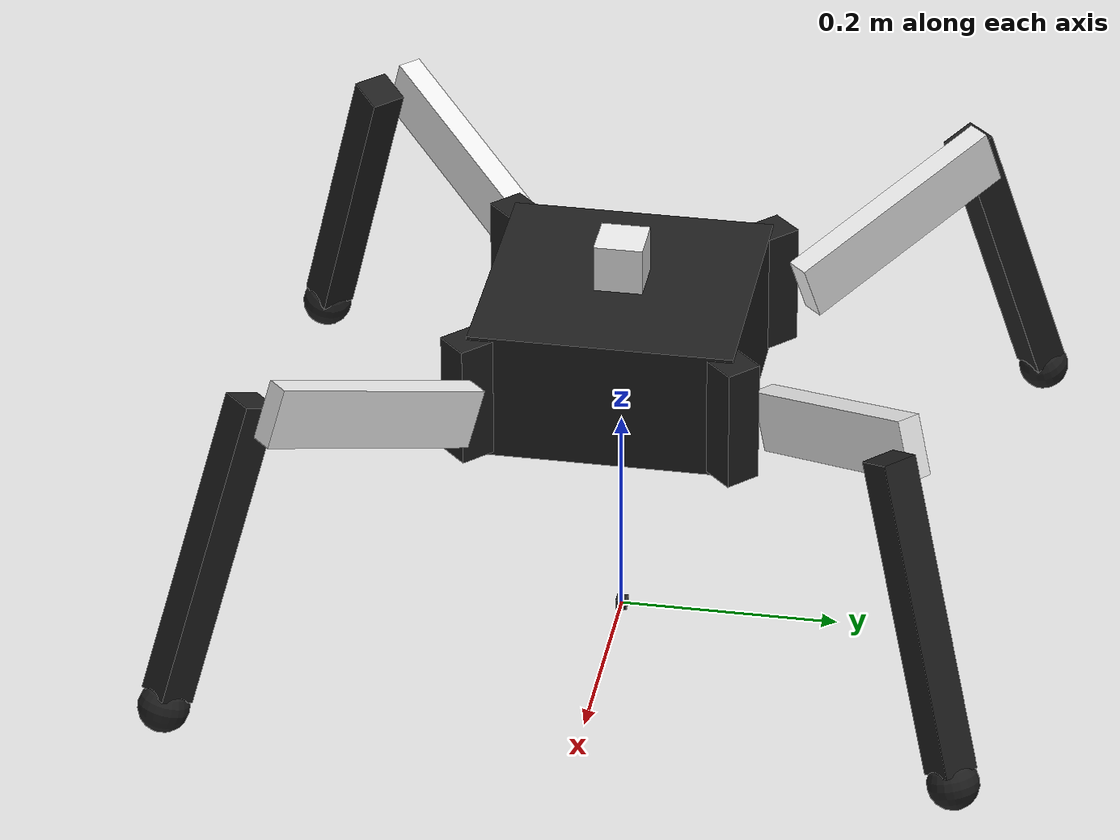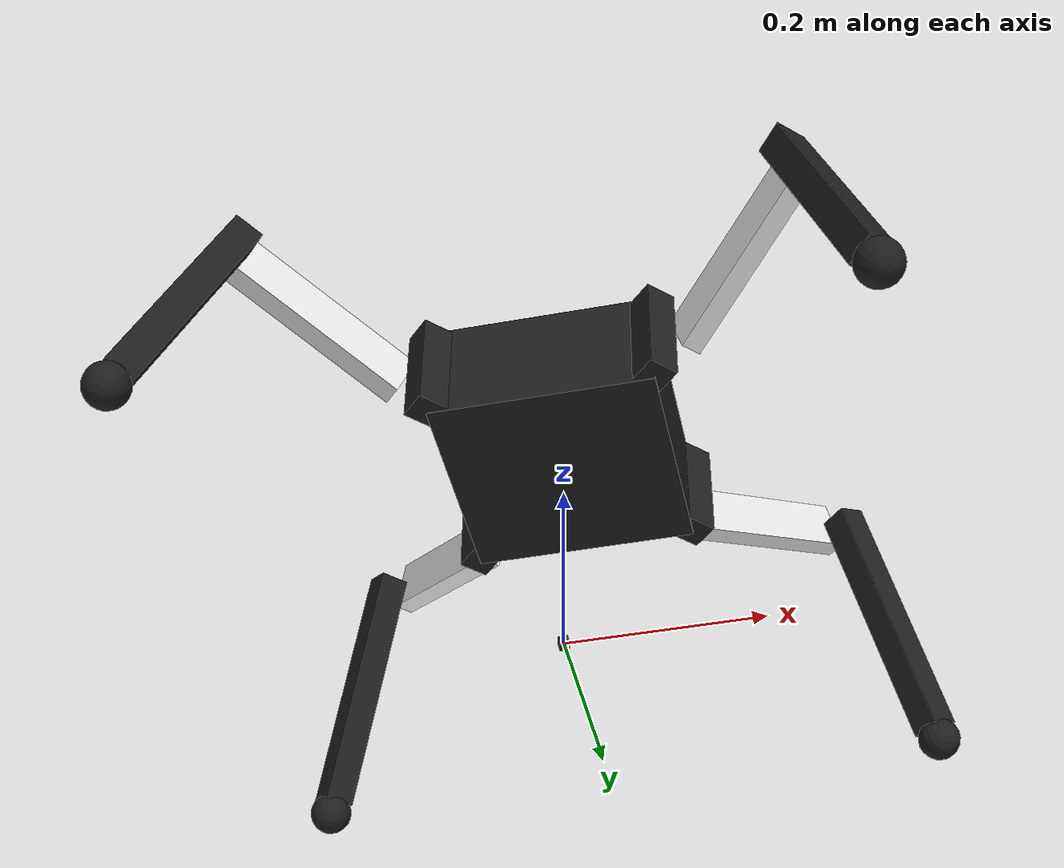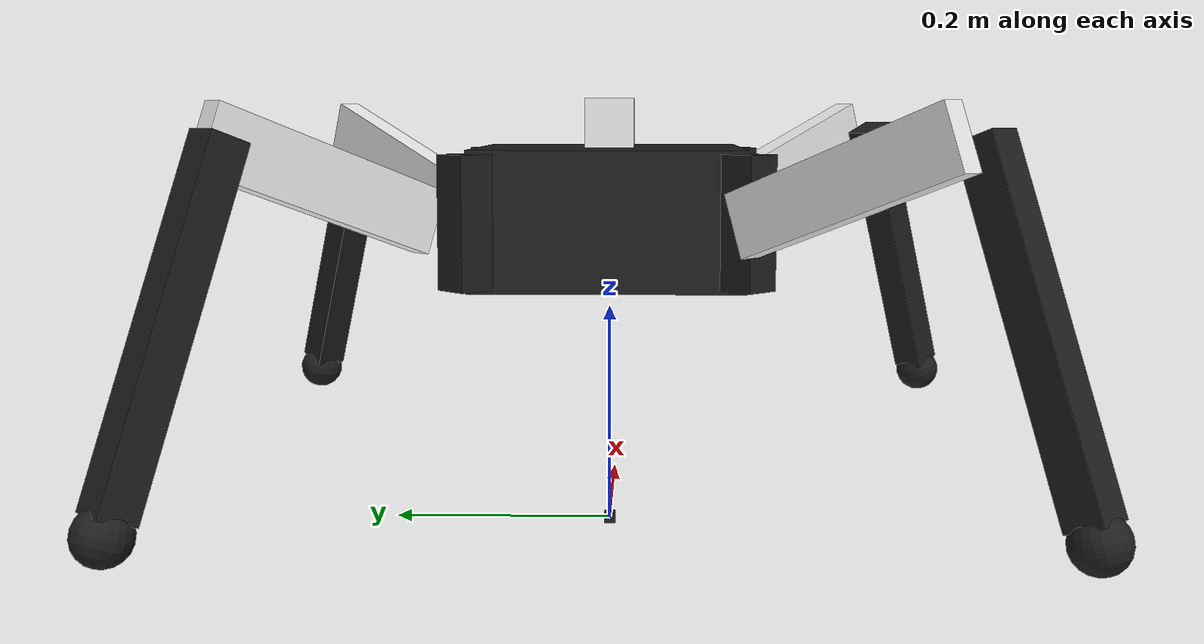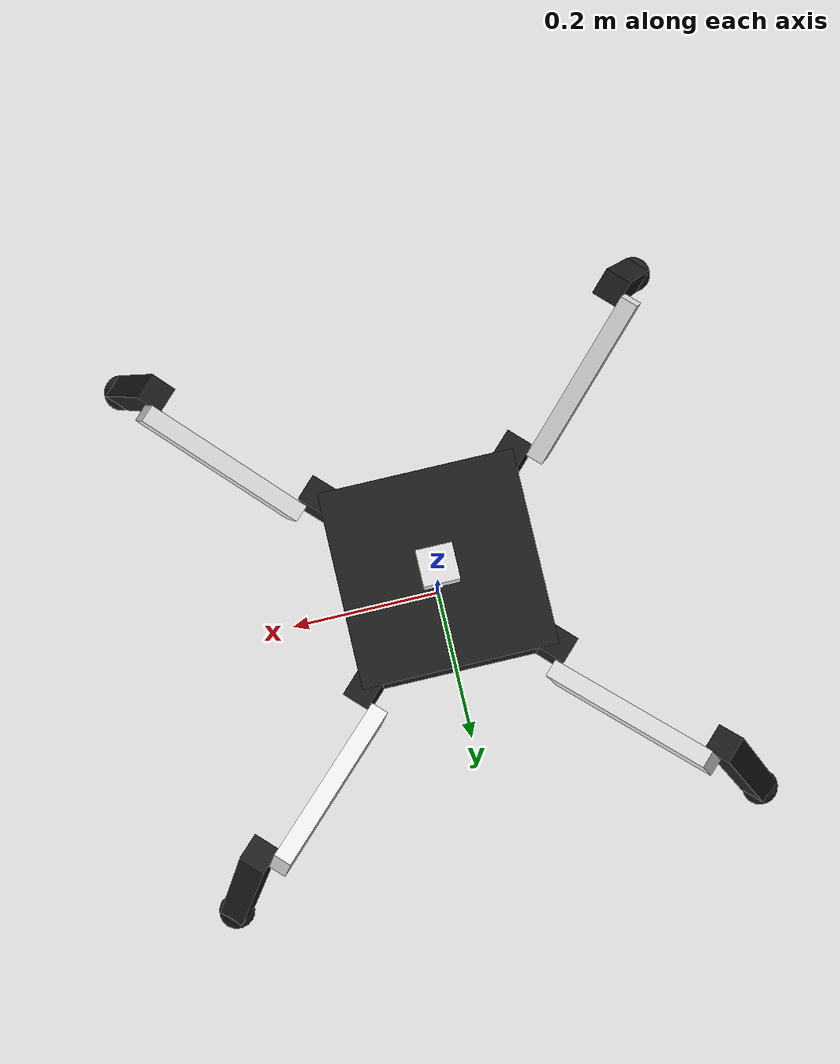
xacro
<?xml version="1.0"?>
<robot name="quadruped" xmlns:xacro="http://ros.org/wiki/xacro">
  <!-- Gazebo plugin for ROS Control -->
  <gazebo>
    <plugin name="gazebo_ros_control" filename="libgazebo_ros_control.so">
      <robotNamespace>/quadruped</robotNamespace>
    </plugin>
  </gazebo>

  <xacro:property name="damping_value" value="0.1" />
  <xacro:property name="friction_value" value="0.05" />
  <xacro:property name="scaling_factor" value="2.2" />
  <!--height:z width:y width:x -->
  <xacro:property name="body_width" value="${scaling_factor*0.108}" />
  <xacro:property name="body_height" value="${scaling_factor*0.055}" />
  <xacro:property name="body_mass" value="${(scaling_factor**3)*0.4}" />

  <xacro:property name="imu_size" value="${scaling_factor*0.02}" />
  <xacro:property name="imu_mass" value="${(scaling_factor**3)*0.05}" />

  <!--height:z width:y depth:x -->
  <xacro:property name="leg1_height" value="${scaling_factor*0.13}" />
  <xacro:property name="leg1_width" value="${scaling_factor*0.015}" />
  <xacro:property name="leg1_depth" value="${scaling_factor*0.015}" />
  <xacro:property name="leg1_mass" value="${(scaling_factor**3)*0.8}" />
  <xacro:property name="leg1_joint_low" value="${-pi/3.0}" />
  <xacro:property name="leg1_joint_high" value="${pi*3.0}" />

  <xacro:property name="leg2_height" value="${scaling_factor*0.025}" />
  <xacro:property name="leg2_width" value="${scaling_factor*0.01}" />
  <xacro:property name="leg2_depth" value="${scaling_factor*0.1}" />
  <xacro:property name="leg2_mass" value="${(scaling_factor**3)*0.05}" />
  <xacro:property name="leg2_joint_low" value="${-pi/3.0}" />
  <xacro:property name="leg2_joint_high" value="${pi/3.0}" />
  <xacro:property name="leg2_init_pitch" value="${pi*16.0/18.0}" />

  <xacro:property name="leg3_height" value="${scaling_factor*0.052}" />
  <xacro:property name="leg3_width" value="${scaling_factor*0.015}" />
  <xacro:property name="leg3_depth" value="${scaling_factor*0.015}" />
  <xacro:property name="leg3_mass" value="${(scaling_factor**3)*0.1}" />
  <xacro:property name="leg3_joint_low" value="${-pi/3.0}" />
  <xacro:property name="leg3_joint_high" value="${pi/3.0}" />

  <xacro:property name="leg_tip_mass" value="${(scaling_factor**3)*0.02}" />

  <xacro:property name="servo_vel" value="9" />
  <xacro:property name="servo_effort_limit" value="100" />

  <!-- Import Rviz colors -->
  <xacro:include filename="$(find quadruped)/urdf/materials.xacro" />

  <!-- Inertia -->
  <xacro:macro name="box_inertial" params="mass width depth">
    <inertial>
      <mass value="${mass}" />
      <inertia ixx="${mass*(width*width+depth*depth)/12.0}" ixy="0.0" ixz="0.0" iyy="${mass*(width*width+depth*depth)/12.0}" iyz="0.0" izz="${mass*(width*width+depth*depth)/12.0}" />
    </inertial>
  </xacro:macro>

  <xacro:macro name="sphere_inertial" params="mass radius">
    <inertial>
      <mass value="${mass}" />
      <inertia ixx="0.1" ixy="0.0" ixz="0.0" iyy="0.1" iyz="0.0" izz="0.1"/>
    </inertial>
  </xacro:macro>

  <!-- Dummmy -->
  <link name="dummy">
  </link>
  <!-- Quadruped -->
  <link name="dummy_link">
    <visual>
      <geometry>
        <box size="0.01 0.01 0.01"/>
      </geometry>
      <material name="black"/>
    </visual>
    <inertial>
      <mass value="0.01" />
      <inertia ixx="0.00001" ixy="0.0" ixz="0.0" iyy="0.00001" iyz="0.0" izz="0.00001" />
    </inertial>
    <gazebo reference="dummy_link">
    </gazebo>
  </link>

  <joint name="dummy_joint" type="fixed">
     <parent link="dummy"/>
     <child link="dummy_link"/>
   </joint>

  <link name="base_link">
    <visual>
      <geometry>
        <box size="${body_width} ${body_width} ${body_height}"/>
      </geometry>
      <material name="black"/>
    </visual>
    <collision>
      <geometry>
        <box size="${body_width} ${body_width} ${body_height}"/>
      </geometry>
    </collision>
    <xacro:box_inertial mass="${body_mass}" width="${body_width}" depth="${body_width}"/>
  </link>
  <joint name="dummy_base_joint" type="fixed">
    <parent link="dummy_link"/>
    <child link="base_link"/>
    <origin xyz="0 0 ${leg1_height}" rpy="0 0 0"/>
  </joint>
  <gazebo reference="base_link">
    <gravity>true</gravity>
    <mu1>${friction_value}</mu1>
    <mu2>${friction_value}</mu2>
    <material>Gazebo/Black</material>
  </gazebo>
  <gazebo reference="dummy_base_joint">
    <provideFeedback>true</provideFeedback>
    <disableFixedJointLumping>true</disableFixedJointLumping>
  </gazebo>

  <link name="imu_link">
    <visual>
      <geometry>
        <box size="${imu_size} ${imu_size} ${imu_size}"/>
      </geometry>
      <material name="white"/>
    </visual>
    <collision>
      <geometry>
        <box size="${imu_size} ${imu_size} ${imu_size}"/>
      </geometry>
    </collision>
    <xacro:box_inertial mass="${imu_mass}" width="${imu_size}" depth="${imu_size}"/>
  </link>
  <joint name="base_imu_joint" type="fixed">
    <parent link="base_link"/>
    <child link="imu_link"/>
    <origin xyz="0 0 ${(body_height/2.0)+(imu_size/2.0)}" rpy="0 0 0"/>
    <dynamics damping="${damping_value}" friction="${friction_value}" />
  </joint>
  <gazebo reference="imu_link">
    <material>Gazebo/White</material>
    <gravity>true</gravity>
    <sensor name="imu_sensor" type="imu">
      <always_on>true</always_on>
      <update_rate>100</update_rate>
      <visualize>true</visualize>
      <topic>__default_topic__</topic>
      <plugin filename="libgazebo_ros_imu_sensor.so" name="imu_plugin">
        <robotNamespace>/quadruped</robotNamespace>
        <topicName>imu</topicName>
        <bodyName>imu_link</bodyName>
        <updateRateHZ>100.0</updateRateHZ>
        <gaussianNoise>0.0</gaussianNoise>
        <xyzOffset>0 0 0</xyzOffset>
        <rpyOffset>0 0 0</rpyOffset>
        <frameName>imu_link</frameName>
      </plugin>
      <pose>0 0 0 0 0 0</pose>
    </sensor>
  </gazebo>
  <gazebo reference="base_imu_joint">
    <provideFeedback>true</provideFeedback>
    <disableFixedJointLumping>true</disableFixedJointLumping>
  </gazebo>

  <xacro:macro name="leg_tip" params="prefix suffix reflect_right">
    <link name="${prefix}_${suffix}_leg_tip">
      <visual>
        <origin xyz="0 0 0" rpy="0 0 0" />
        <geometry>
          <sphere radius="${leg1_depth*1.41/2.0}"/>
        </geometry>
        <material name="black"/>
      </visual>
      <collision name="${prefix}_${suffix}_leg_tip">
        <origin xyz="0 0 0" rpy="0 0 0" />
        <geometry>
          <sphere radius="${leg1_depth/2.0}"/>
        </geometry>
      </collision>
      <xacro:sphere_inertial mass="${leg_tip_mass}" radius="${leg1_depth/2.0}"/>
    </link>
    <joint name="${prefix}_${suffix}_leg_tip_joint" type="fixed">
      <parent link="${prefix}_${suffix}_leg1"/>
      <child link="${prefix}_${suffix}_leg_tip"/>
      <origin xyz="0 ${-reflect_right*leg1_width/2.0} ${-leg1_height-leg1_depth*1.41/4.0}" rpy="0 0 0"/>
      <dynamics damping="${damping_value}" friction="${friction_value}" />
    </joint>
    <gazebo reference="${prefix}_${suffix}_leg_tip">
      <gravity>true</gravity>
      <minDepth>0.002</minDepth>
      <collision name="${prefix}_${suffix}_leg_tip_collision">
        <geometry>
          <sphere>
            <radius>${leg1_depth/2.0}</radius>
          </sphere>
        </geometry>
        <surface>
          <friction>
            <ode>
              <mu>${friction_value}</mu>
              <mu2>${friction_value}</mu2>
            </ode>
            <torsional>
              <coefficient>${friction_value}</coefficient>
              <use_patch_radius>true</use_patch_radius>
              <surface_radius>${leg1_depth/2.0}</surface_radius>
              <patch_radius>${leg1_depth/2.0}</patch_radius>
            </torsional>
          </friction>
        </surface>
      </collision>
      <sensor name="${prefix}_${suffix}_leg_tip_contact_sensor" type="contact">
        <plugin name="gazebo_ros_bumper_controller" filename="libgazebo_ros_bumper.so">
          <robotNamespace>/quadruped</robotNamespace>
          <bumperTopicName>${prefix}_${suffix}_leg_tip_contact_sensor</bumperTopicName>
          <frameName>dummy_link</frameName>
          <alwayson>true</alwayson>
        </plugin>
        <always_on>true</always_on>
        <update_rate>0</update_rate>
        <contact>
          <collision>${prefix}_${suffix}_leg_tip_collision</collision>
        </contact>
      </sensor>
      <material>Gazebo/Black</material>
    </gazebo>
    <gazebo reference="${prefix}_${suffix}_leg_tip_joint">
      <provideFeedback>true</provideFeedback>
      <disableFixedJointLumping>true</disableFixedJointLumping>
    </gazebo>
  </xacro:macro>

  <xacro:macro name="leg1" params="prefix suffix reflect_right">
    <link name="${prefix}_${suffix}_leg1">
      <visual>
        <origin xyz="0 ${-reflect_right*leg1_width/2.0} ${-leg1_height/2.0}" rpy="0 0 0" />
        <geometry>
          <box size="${leg1_depth} ${leg1_width} ${leg1_height}"/>
        </geometry>
        <material name="black"/>
      </visual>
      <collision>
        <origin xyz="0 ${-reflect_right*leg1_width/2.0} ${-leg1_height/2.0}" rpy="0 0 0" />
        <geometry>
          <box size="${leg1_depth} ${leg1_width} ${leg1_height}"/>
        </geometry>
      </collision>
      <xacro:box_inertial mass="${leg1_mass}" width="${leg1_width}" depth="${leg1_height}"/>
    </link>
    <joint name="${prefix}_${suffix}_leg1_joint" type="revolute">
      <axis xyz="0 1 0" />
      <parent link="${prefix}_${suffix}_leg2"/>
      <child link="${prefix}_${suffix}_leg1"/>
      <origin xyz="${leg2_depth*cos(pi-leg2_init_pitch)} 0 ${leg2_depth*sin(pi-leg2_init_pitch)}" rpy="0 ${-pi+leg2_init_pitch} 0"/>
      <limit lower="${leg1_joint_low}" upper="${leg1_joint_high}" effort="${servo_effort_limit}" velocity="${servo_vel}"/>
      <dynamics damping="${damping_value}" friction="${friction_value}" />
    </joint>
    <gazebo reference="${prefix}_${suffix}_leg1">
      <gravity>true</gravity>
      <mu1>${friction_value}</mu1>
      <mu2>${friction_value}</mu2>
      <material>Gazebo/White</material>
    </gazebo>
    <gazebo reference="${prefix}_${suffix}_leg1_joint">
      <provideFeedback>true</provideFeedback>
      <sensor name="${prefix}_${suffix}_leg1_joint_force_torque" type="force_torque">
        <always_on>true</always_on>
        <update_rate>100.0</update_rate>
        <force_torque>
          <frame>child</frame>
          <measure_direction>child_to_parent</measure_direction>
        </force_torque>
      </sensor>
    </gazebo>
    <gazebo>
      <plugin name="ft_sensor" filename="libgazebo_ros_ft_sensor.so">
        <robotNamespace>/quadruped</robotNamespace>
        <topicName>${prefix}_${suffix}_leg1_joint_force_torque</topicName>
        <jointName>${prefix}_${suffix}_leg1_joint</jointName>
        <noise>
          <type>gaussian</type>
          <mean>0.0</mean>
          <stddev>0.003</stddev>
          <!-- change this to simulate noise -->
        </noise>
      </plugin>
    </gazebo>
  </xacro:macro>

  <xacro:macro name="leg2" params="prefix suffix reflect_right">
    <link name="${prefix}_${suffix}_leg2">
      <visual>
        <origin xyz="${leg2_depth*cos(pi-leg2_init_pitch)/2.0} ${reflect_right*leg2_width/2.0} ${leg2_depth*sin(pi-leg2_init_pitch)/2.0}" rpy="0 ${leg2_init_pitch} 0" />
        <geometry>
          <box size="${leg2_depth} ${leg2_width} ${leg2_height}"/>
        </geometry>
        <material name="white"/>
      </visual>
      <collision>
        <origin xyz="${leg2_depth*cos(pi-leg2_init_pitch)/2.0} ${reflect_right*leg2_width/2.0} ${leg2_depth*sin(pi-leg2_init_pitch)/2.0}" rpy="0 ${leg2_init_pitch} 0" />
        <geometry>
          <box size="${leg2_depth} ${leg2_width} ${leg2_height}"/>
        </geometry>
      </collision>
      <xacro:box_inertial mass="${leg2_mass}" width="${leg2_width}" depth="${leg2_depth}"/>
    </link>
    <joint name="${prefix}_${suffix}_leg2_joint" type="revolute">
      <axis xyz="0 1 0" rpy="0 0 0" />
      <parent link="${prefix}_${suffix}_leg3"/>
      <child link="${prefix}_${suffix}_leg2"/>
      <origin xyz="${leg3_depth/2.0} ${reflect_right*leg3_width/2.0} 0" />
      <limit lower="${leg2_joint_low}" upper="${leg2_joint_high}" effort="${servo_effort_limit}" velocity="${servo_vel}"/>
      <dynamics damping="${damping_value}" friction="${friction_value}" />
    </joint>
    <gazebo reference="${prefix}_${suffix}_leg2">
      <gravity>true</gravity>
      <mu1>${friction_value}</mu1>
      <mu2>${friction_value}</mu2>
      <material>Gazebo/Black</material>
    </gazebo>
    <gazebo reference="${prefix}_${suffix}_leg2_joint">
      <provideFeedback>true</provideFeedback>
      <sensor name="${prefix}_${suffix}_leg2_joint_force_torque" type="force_torque">
        <always_on>true</always_on>
        <update_rate>100.0</update_rate>
        <force_torque>
          <frame>child</frame>
          <measure_direction>child_to_parent</measure_direction>
        </force_torque>
      </sensor>
    </gazebo>
    <gazebo>
      <plugin name="ft_sensor" filename="libgazebo_ros_ft_sensor.so">
        <robotNamespace>/quadruped</robotNamespace>
        <topicName>${prefix}_${suffix}_leg2_joint_force_torque</topicName>
        <jointName>${prefix}_${suffix}_leg2_joint</jointName>
        <noise>
          <type>gaussian</type>
          <mean>0.0</mean>
          <stddev>0.003</stddev>
          <!-- change this to simulate noise -->
        </noise>
      </plugin>
    </gazebo>
  </xacro:macro>

  <xacro:macro name="leg3" params="prefix suffix reflect_front reflect_right">
    <link name="${prefix}_${suffix}_leg3">
      <visual>
        <origin xyz="0 0 0" rpy="0 0 0" />
        <geometry>
          <box size="${leg3_depth} ${leg3_width} ${leg3_height}"/>
        </geometry>
        <material name="black"/>
      </visual>
      <collision>
        <origin xyz="0 0 0" rpy="0 0 0" />
        <geometry>
          <box size="${leg3_depth} ${leg3_width} ${leg3_height}"/>
        </geometry>
      </collision>
      <xacro:box_inertial mass="${leg3_mass}" width="${leg3_width}" depth="${leg3_depth}"/>
    </link>
    <joint name="${prefix}_${suffix}_leg3_joint" type="revolute">
      <axis xyz="0 0 1"/>
      <parent link="base_link"/>
      <child link="${prefix}_${suffix}_leg3"/>
      <origin xyz="${reflect_right*body_width/2.0} ${reflect_front*body_width/2.0} 0" rpy="0 0 ${reflect_front*pi/2.0 - reflect_front*reflect_right*pi/4.0}"/>
      <limit lower="${leg3_joint_low}" upper="${leg3_joint_high}" effort="${servo_effort_limit}" velocity="${servo_vel}"/>
      <dynamics damping="${damping_value}" friction="${friction_value}" />
    </joint>
    <gazebo reference="${prefix}_${suffix}_leg3">
      <gravity>true</gravity>
      <mu1>${friction_value}</mu1>
      <mu2>${friction_value}</mu2>
      <material>Gazebo/White</material>
    </gazebo>
    <gazebo reference="${prefix}_${suffix}_leg3_joint">
      <provideFeedback>true</provideFeedback>
      <sensor name="${prefix}_${suffix}_leg3_joint_force_torque" type="force_torque">
        <always_on>true</always_on>
        <update_rate>100.0</update_rate>
        <force_torque>
          <frame>child</frame>
          <measure_direction>child_to_parent</measure_direction>
        </force_torque>
      </sensor>
    </gazebo>
    <gazebo>
      <plugin name="ft_sensor" filename="libgazebo_ros_ft_sensor.so">
        <robotNamespace>/quadruped</robotNamespace>
        <topicName>${prefix}_${suffix}_leg3_joint_force_torque</topicName>
        <jointName>${prefix}_${suffix}_leg3_joint</jointName>
        <noise>
          <type>gaussian</type>
          <mean>0.0</mean>
          <stddev>0.003</stddev>
          <!-- change this to simulate noise -->
        </noise>
      </plugin>
    </gazebo>
  </xacro:macro>

  <xacro:macro name="leg" params="prefix suffix reflect_front reflect_right">
    <xacro:leg3 prefix="${prefix}" suffix="${suffix}" reflect_front="${reflect_front}" reflect_right="${reflect_right}"/>
    <xacro:leg2 prefix="${prefix}" suffix="${suffix}" reflect_right="${reflect_right}"/>
    <xacro:leg1 prefix="${prefix}" suffix="${suffix}" reflect_right="${reflect_right}"/>
    <xacro:leg_tip prefix="${prefix}" suffix="${suffix}" reflect_right="${reflect_right}"/>
  </xacro:macro>

  <xacro:leg prefix="front" suffix="right" reflect_front="1.0" reflect_right="1.0"/>
  <xacro:leg prefix="front" suffix="left" reflect_front="1.0" reflect_right="-1.0"/>
  <xacro:leg prefix="back" suffix="right" reflect_front="-1.0" reflect_right="1.0"/>
  <xacro:leg prefix="back" suffix="left" reflect_front="-1.0" reflect_right="-1.0"/>

  <!-- gazebo ros joint state pub plugin -->
  <gazebo>
    <plugin name="joint_state_publisher" filename="libgazebo_ros_joint_state_publisher.so">
      <robotNamespace>/quadruped</robotNamespace>
      <jointName>front_right_leg1_joint, front_right_leg2_joint, front_right_leg3_joint, front_left_leg1_joint, front_left_leg2_joint, front_left_leg3_joint, back_right_leg1_joint, back_right_leg2_joint, back_right_leg3_joint, back_left_leg1_joint, back_left_leg2_joint, back_left_leg3_joint</jointName>
      <updateRate>60.0</updateRate>
      <alwaysOn>true</alwaysOn>
    </plugin>
  </gazebo>

  <!-- transmissions -->
  <xacro:macro name="trans" params="num front_back right_left leg">
    <transmission name="tran${num}">
      <joint name="${front_back}_${right_left}_${leg}_joint">
        <hardwareInterface>hardware_interface/PositionJointInterface</hardwareInterface>
      </joint>
      <type>transmission_interface/SimpleTransmission</type>
      <actuator name="servo${num}">
        <hardwareInterface>hardware_interface/PositionJointInterface</hardwareInterface>
        <mechanicalReduction>1</mechanicalReduction>
      </actuator>
    </transmission>
  </xacro:macro>

  <xacro:trans num="1" front_back="front" right_left="right" leg="leg1"/>
  <xacro:trans num="2" front_back="front" right_left="right" leg="leg2"/>
  <xacro:trans num="3" front_back="front" right_left="right" leg="leg3"/>
  <xacro:trans num="4" front_back="front" right_left="left" leg="leg1"/>
  <xacro:trans num="5" front_back="front" right_left="left" leg="leg2"/>
  <xacro:trans num="6" front_back="front" right_left="left" leg="leg3"/>
  <xacro:trans num="7" front_back="back" right_left="right" leg="leg1"/>
  <xacro:trans num="8" front_back="back" right_left="right" leg="leg2"/>
  <xacro:trans num="9" front_back="back" right_left="right" leg="leg3"/>
  <xacro:trans num="10" front_back="back" right_left="left" leg="leg1"/>
  <xacro:trans num="11" front_back="back" right_left="left" leg="leg2"/>
  <xacro:trans num="12" front_back="back" right_left="left" leg="leg3"/>

</robot>

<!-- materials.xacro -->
<robot name="quadruped" xmlns:xacro="http://www.ros.org/wiki/xacro" >

<material name="silver">
  <color rgba="0.700 0.700 0.700 1.000"/>
</material>

</robot>
